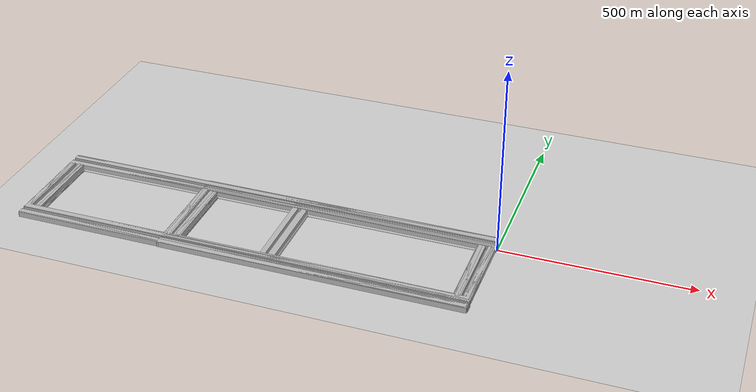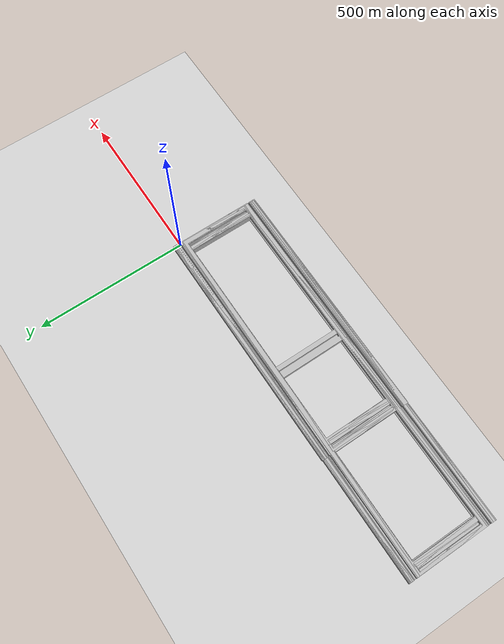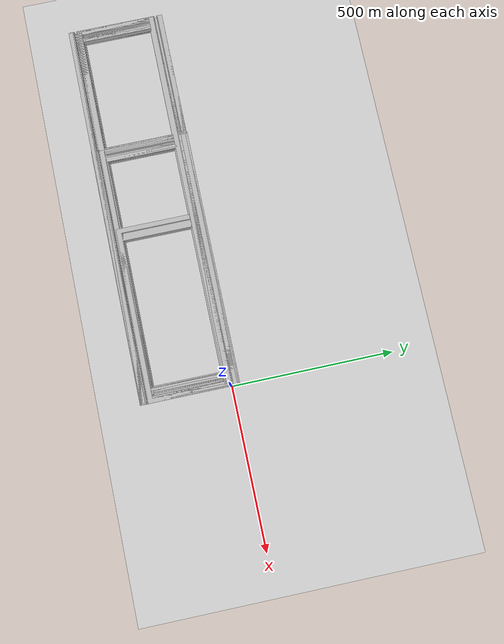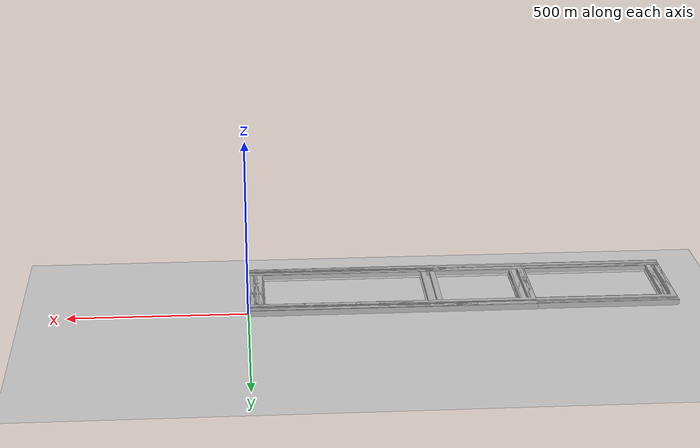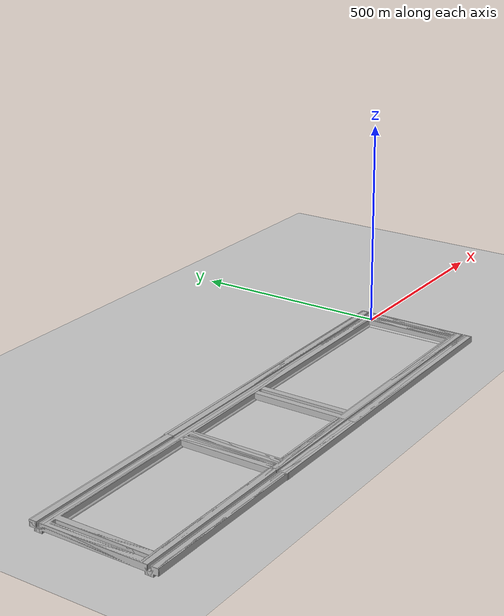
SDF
<sdf version="1.4">
 <world name="default">
  <light name="sun" type="directional">
   <pose>0 0 10 0 -0 0</pose>
   <diffuse>0.8 0.8 0.8 1</diffuse>
   <specular>0.2 0.2 0.2 1</specular>
   <attenuation>
    <range>1000</range>
    <constant>0.9</constant>
    <linear>0.01</linear>
    <quadratic>0.001</quadratic>
   </attenuation>
   <direction>-0.5 0.1 -0.9</direction>
  </light>
  <model name="ground_plane">
   <static>1</static>
   <link name="link">
    <collision name="collision">
     <geometry><plane><normal>0 0 1</normal><size>100 100</size></plane></geometry>
     <surface><friction><ode><mu>0.1</mu><mu2>0.1</mu2></ode></friction></surface>
    </collision>
    <visual name="visual">
     <cast_shadows>0</cast_shadows>
     <geometry><plane><normal>0 0 1</normal><size>100 100</size></plane></geometry>
     <material>
      <script><uri>file://media/materials/scripts/gazebo.material</uri><name>Gazebo/Grey</name></script>
     </material>
    </visual>
    <velocity_decay><linear>0</linear><angular>0</angular></velocity_decay>
   </link>
  </model>
  <physics type="ode">
   <max_step_size>0.001</max_step_size>
   <real_time_factor>1</real_time_factor>
   <real_time_update_rate>1000</real_time_update_rate>
   <gravity>0 0 -9.8</gravity>
  </physics>
  <scene><ambient>0.4 0.4 0.4 1</ambient><background>0.7 0.7 0.7 1</background><shadows>1</shadows></scene>
  <spherical_coordinates>
   <surface_model>EARTH_WGS84</surface_model>
   <latitude_deg>0</latitude_deg>
   <longitude_deg>0</longitude_deg>
   <elevation>0</elevation>
   <heading_deg>0</heading_deg>
  </spherical_coordinates>
  <model name="Wall_800x300x40">
   <static>1</static>
   <link name="link">
    <collision name="collision">
     <pose>-0.02 0.4 0.15 0 -0 0</pose>
     <geometry><box><size>0.04 0.8 0.3</size></box></geometry>
    </collision>
    <visual name="visual">
     <geometry><mesh><uri>model://wall_800x300x40/meshes/wall_800x300x40.dae</uri></mesh></geometry>
    </visual>
    <velocity_decay><linear>0</linear><angular>0</angular></velocity_decay>
   </link>
  </model>
  <model name="platform_800x500x99">
   <static>1</static>
   <link name="link">
    <collision name="collision">
     <pose>-0.25 0.4 0.05 0 -0 0</pose>
     <geometry><box><size>0.5 0.8 0.099</size></box></geometry>
    </collision>
    <visual name="visual">
     <geometry><mesh><uri>model://platform_800x500x99/meshes/platform_800x500x99.dae</uri></mesh></geometry>
    </visual>
    <velocity_decay><linear>0</linear><angular>0</angular></velocity_decay>
   </link>
   <pose>-0.043684 0.004164 0 0 -0 0</pose>
  </model>
  <model name="Conveyor_Belt_180degree">
   <static>1</static>
   <link name="link">
    <collision name="collision">
     <geometry>
      <mesh><uri>model://Conveyor_Belt_180degree/meshes/conveyor_belt_180degree.dae</uri></mesh>
     </geometry>
    </collision>
    <visual name="visual">
     <geometry>
      <mesh><uri>model://Conveyor_Belt_180degree/meshes/conveyor_belt_180degree.dae</uri></mesh>
     </geometry>
    </visual>
    <velocity_decay><linear>0</linear><angular>0</angular></velocity_decay>
   </link>
   <pose>-0.129819 2.33857 0 0 -0 0</pose>
  </model>
  <model name="ppt_platform_800x500x99">
   <static>1</static>
   <link name="link">
    <collision name="collision">
     <geometry>
      <mesh><uri>model://ppt_platform_800x500x99/meshes/ppt_platform_800x500x99.dae</uri></mesh>
     </geometry>
    </collision>
    <visual name="visual">
     <geometry>
      <mesh><uri>model://ppt_platform_800x500x99/meshes/ppt_platform_800x500x99.dae</uri></mesh>
     </geometry>
    </visual>
    <velocity_decay><linear>0</linear><angular>0</angular></velocity_decay>
   </link>
   <pose>-0.400637 4.63098 0 0 -0 3.13685</pose>
  </model>
  <model name="Wall_800x300x40_1">
   <static>1</static>
   <link name="link">
    <collision name="collision">
     <pose>-0.02 0.4 0.15 0 -0 0</pose>
     <geometry><box><size>0.04 0.8 0.3</size></box></geometry>
    </collision>
    <visual name="visual">
     <geometry><mesh><uri>model://wall_800x300x40/meshes/wall_800x300x40.dae</uri></mesh></geometry>
    </visual>
    <velocity_decay><linear>0</linear><angular>0</angular></velocity_decay>
   </link>
   <pose>0 6.42896 0 0 -0 0</pose>
  </model>
  <model name="platform_800x500x99_0">
   <static>1</static>
   <link name="link">
    <collision name="collision">
     <pose>-0.25 0.4 0.05 0 -0 0</pose>
     <geometry><box><size>0.5 0.8 0.099</size></box></geometry>
    </collision>
    <visual name="visual">
     <geometry><mesh><uri>model://platform_800x500x99/meshes/platform_800x500x99.dae</uri></mesh></geometry>
    </visual>
    <velocity_decay><linear>0</linear><angular>0</angular></velocity_decay>
   </link>
   <pose>-0.041711 6.42911 0 0 -0 0</pose>
  </model>
  <model name="Wall_1200x300x40">
   <static>1</static>
   <link name="link">
    <collision name="collision">
     <pose>-0.02 0.6 0.15 0 -0 0</pose>
     <geometry><box><size>0.04 1.2 0.3</size></box></geometry>
    </collision>
    <visual name="visual">
     <geometry><mesh><uri>model://wall_1200x300x40/meshes/wall_1200x300x40.dae</uri></mesh></geometry>
    </visual>
    <velocity_decay><linear>0</linear><angular>0</angular></velocity_decay>
   </link>
   <pose>-2.59027 4.45568 0 0 -0 0</pose>
  </model>
  <model name="Wall_1200x300x40_0">
   <static>1</static>
   <link name="link">
    <collision name="collision">
     <pose>-0.02 0.6 0.15 0 -0 0</pose>
     <geometry><box><size>0.04 1.2 0.3</size></box></geometry>
    </collision>
    <visual name="visual">
     <geometry><mesh><uri>model://wall_1200x300x40/meshes/wall_1200x300x40.dae</uri></mesh></geometry>
    </visual>
    <velocity_decay><linear>0</linear><angular>0</angular></velocity_decay>
   </link>
   <pose>-2.58663 2.5549 0 0 -0 0</pose>
  </model>
  <model name="Wall_1200x300x40_1">
   <static>1</static>
   <link name="link">
    <collision name="collision">
     <pose>-0.02 0.6 0.15 0 -0 0</pose>
     <geometry><box><size>0.04 1.2 0.3</size></box></geometry>
    </collision>
    <visual name="visual">
     <geometry><mesh><uri>model://wall_1200x300x40/meshes/wall_1200x300x40.dae</uri></mesh></geometry>
    </visual>
    <velocity_decay><linear>0</linear><angular>0</angular></velocity_decay>
   </link>
   <pose>-2.58675 1.35351 0 0 -0 0</pose>
  </model>
  <model name="shelf_assembly_270degree_1">
   <static>1</static>
   <link name="link">
    <collision name="collision">
     <geometry>
      <mesh><uri>model://shelf_assembly_270degree/meshes/shelf_assembly_270degree.dae</uri></mesh>
     </geometry>
    </collision>
    <visual name="visual">
     <geometry>
      <mesh><uri>model://shelf_assembly_270degree/meshes/shelf_assembly_270degree.dae</uri></mesh>
     </geometry>
    </visual>
    <velocity_decay><linear>0</linear><angular>0</angular></velocity_decay>
   </link>
   <pose>-1.92205 5.60502 0 0 -0 0</pose>
  </model>
  <model name="platform_800x500x99_90degree">
   <static>1</static>
   <link name="link">
    <collision name="collision">
     <pose>-0.4 -0.25 0.05 0 -0 0</pose>
     <geometry><box><size>0.8 0.5 0.099</size></box></geometry>
    </collision>
    <visual name="visual">
     <geometry>
      <mesh><uri>model://platform_800x500x99_90degree/meshes/platform_800x500x99_90degree.dae</uri></mesh>
     </geometry>
    </visual>
    <velocity_decay><linear>0</linear><angular>0</angular></velocity_decay>
   </link>
   <pose>-1.76068 2.73884 0 0 -0 0</pose>
  </model>
  <model name="table_monitor">
   <static>1</static>
   <link name="link">
    <collision name="collision">
     <geometry><mesh><uri>model://table_monitor/meshes/table_monitor.dae</uri></mesh></geometry>
    </collision>
    <visual name="visual">
     <geometry><mesh><uri>model://table_monitor/meshes/table_monitor.dae</uri></mesh></geometry>
    </visual>
    <velocity_decay><linear>0</linear><angular>0</angular></velocity_decay>
   </link>
   <pose>-3.62486 0.056404 0 0 -0 3.13812</pose>
  </model>
  <model name="Wall_800x300x40_2">
   <static>1</static>
   <link name="link">
    <collision name="collision">
     <pose>-0.02 0.4 0.15 0 -0 0</pose>
     <geometry><box><size>0.04 0.8 0.3</size></box></geometry>
    </collision>
    <visual name="visual">
     <geometry><mesh><uri>model://wall_800x300x40/meshes/wall_800x300x40.dae</uri></mesh></geometry>
    </visual>
    <velocity_decay><linear>0</linear><angular>0</angular></velocity_decay>
   </link>
   <pose>-4.65708 6.54723 0 0 -0 0</pose>
  </model>
  <model name="Wall_1200x300x40_2">
   <static>1</static>
   <link name="link">
    <collision name="collision">
     <pose>-0.02 0.6 0.15 0 -0 0</pose>
     <geometry><box><size>0.04 1.2 0.3</size></box></geometry>
    </collision>
    <visual name="visual">
     <geometry><mesh><uri>model://wall_1200x300x40/meshes/wall_1200x300x40.dae</uri></mesh></geometry>
    </visual>
    <velocity_decay><linear>0</linear><angular>0</angular></velocity_decay>
   </link>
   <pose>-3.44166 4.37132 0 0 -0 0</pose>
  </model>
  <model name="Wall_540x300x40">
   <static>1</static>
   <link name="link">
    <collision name="collision">
     <pose>-0.02 0.27 0.15 0 -0 0</pose>
     <geometry><box><size>0.04 0.54 0.3</size></box></geometry>
    </collision>
    <visual name="visual">
     <geometry><mesh><uri>model://wall_540x300x40/meshes/wall_540x300x40.dae</uri></mesh></geometry>
    </visual>
    <velocity_decay><linear>0</linear><angular>0</angular></velocity_decay>
   </link>
   <pose>-3.44133 3.83071 0 0 -0 0</pose>
  </model>
  <model name="Wall_1200x300x40_3">
   <static>1</static>
   <link name="link">
    <collision name="collision">
     <pose>-0.02 0.6 0.15 0 -0 0</pose>
     <geometry><box><size>0.04 1.2 0.3</size></box></geometry>
    </collision>
    <visual name="visual">
     <geometry><mesh><uri>model://wall_1200x300x40/meshes/wall_1200x300x40.dae</uri></mesh></geometry>
    </visual>
    <velocity_decay><linear>0</linear><angular>0</angular></velocity_decay>
   </link>
   <pose>-3.44177 2.63027 0 0 -0 0</pose>
  </model>
  <model name="Wall_1200x300x40_4">
   <static>1</static>
   <link name="link">
    <collision name="collision">
     <pose>-0.02 0.6 0.15 0 -0 0</pose>
     <geometry><box><size>0.04 1.2 0.3</size></box></geometry>
    </collision>
    <visual name="visual">
     <geometry><mesh><uri>model://wall_1200x300x40/meshes/wall_1200x300x40.dae</uri></mesh></geometry>
    </visual>
    <velocity_decay><linear>0</linear><angular>0</angular></velocity_decay>
   </link>
   <pose>-3.44151 1.42939 0 0 -0 0</pose>
  </model>
  <model name="Wall_800x300x40_3">
   <static>1</static>
   <link name="link">
    <collision name="collision">
     <pose>-0.02 0.4 0.15 0 -0 0</pose>
     <geometry><box><size>0.04 0.8 0.3</size></box></geometry>
    </collision>
    <visual name="visual">
     <geometry><mesh><uri>model://wall_800x300x40/meshes/wall_800x300x40.dae</uri></mesh></geometry>
    </visual>
    <velocity_decay><linear>0</linear><angular>0</angular></velocity_decay>
   </link>
   <pose>-4.50145 0.108117 0 0 -0 0</pose>
  </model>
  <model name="Wall_800x300x40_4">
   <static>1</static>
   <link name="link">
    <collision name="collision">
     <pose>-0.02 0.4 0.15 0 -0 0</pose>
     <geometry><box><size>0.04 0.8 0.3</size></box></geometry>
    </collision>
    <visual name="visual">
     <geometry><mesh><uri>model://wall_800x300x40/meshes/wall_800x300x40.dae</uri></mesh></geometry>
    </visual>
    <velocity_decay><linear>0</linear><angular>0</angular></velocity_decay>
   </link>
   <pose>-4.50144 0.908564 0 0 -0 0</pose>
  </model>
  <model name="Wall_800x300x40_5">
   <static>1</static>
   <link name="link">
    <collision name="collision">
     <pose>-0.02 0.4 0.15 0 -0 0</pose>
     <geometry><box><size>0.04 0.8 0.3</size></box></geometry>
    </collision>
    <visual name="visual">
     <geometry><mesh><uri>model://wall_800x300x40/meshes/wall_800x300x40.dae</uri></mesh></geometry>
    </visual>
    <velocity_decay><linear>0</linear><angular>0</angular></velocity_decay>
   </link>
   <pose>-5.3389 0.940142 0 0 -0 0</pose>
  </model>
  <model name="shelf_assembly">
   <static>1</static>
   <link name="link">
    <collision name="collision">
     <geometry><mesh><uri>model://shelf_assembly/meshes/shelf_assembly.dae</uri></mesh></geometry>
    </collision>
    <visual name="visual">
     <geometry><mesh><uri>model://shelf_assembly/meshes/shelf_assembly.dae</uri></mesh></geometry>
    </visual>
    <velocity_decay><linear>0</linear><angular>0</angular></velocity_decay>
   </link>
   <pose>-5.75696 2.24672 0 0 -0 0</pose>
  </model>
  <model name="platform_800x500x99_1">
   <static>1</static>
   <link name="link">
    <collision name="collision">
     <pose>-0.25 0.4 0.05 0 -0 0</pose>
     <geometry><box><size>0.5 0.8 0.099</size></box></geometry>
    </collision>
    <visual name="visual">
     <geometry><mesh><uri>model://platform_800x500x99/meshes/platform_800x500x99.dae</uri></mesh></geometry>
    </visual>
    <velocity_decay><linear>0</linear><angular>0</angular></velocity_decay>
   </link>
   <pose>-5.25748 3.25902 0 0 -0 0</pose>
  </model>
  <model name="Wall_800x300x40_6">
   <static>1</static>
   <link name="link">
    <collision name="collision">
     <pose>-0.02 0.4 0.15 0 -0 0</pose>
     <geometry><box><size>0.04 0.8 0.3</size></box></geometry>
    </collision>
    <visual name="visual">
     <geometry><mesh><uri>model://wall_800x300x40/meshes/wall_800x300x40.dae</uri></mesh></geometry>
    </visual>
    <velocity_decay><linear>0</linear><angular>0</angular></velocity_decay>
   </link>
   <pose>-5.46484 4.81456 0 0 -0 0</pose>
  </model>
  <model name="platform_800x500x99_2">
   <static>1</static>
   <link name="link">
    <collision name="collision">
     <pose>-0.25 0.4 0.05 0 -0 0</pose>
     <geometry><box><size>0.5 0.8 0.099</size></box></geometry>
    </collision>
    <visual name="visual">
     <geometry><mesh><uri>model://platform_800x500x99/meshes/platform_800x500x99.dae</uri></mesh></geometry>
    </visual>
    <velocity_decay><linear>0</linear><angular>0</angular></velocity_decay>
   </link>
   <pose>-3.48448 4.41199 0 0 -0 0</pose>
  </model>
  <model name="platform_800x500x99_90degree_0">
   <static>1</static>
   <link name="link">
    <collision name="collision">
     <pose>-0.4 -0.25 0.05 0 -0 0</pose>
     <geometry><box><size>0.8 0.5 0.099</size></box></geometry>
    </collision>
    <visual name="visual">
     <geometry>
      <mesh><uri>model://platform_800x500x99_90degree/meshes/platform_800x500x99_90degree.dae</uri></mesh>
     </geometry>
    </visual>
    <velocity_decay><linear>0</linear><angular>0</angular></velocity_decay>
   </link>
   <pose>-3.48604 3.40411 0 0 -0 0</pose>
  </model>
  <model name="platform_800x500x99_90degree_1">
   <static>1</static>
   <link name="link">
    <collision name="collision">
     <geometry>
      <mesh><uri>model://platform_800x500x99_90degree/meshes/platform_800x500x99_90degree.dae</uri></mesh>
     </geometry>
    </collision>
    <visual name="visual">
     <geometry>
      <mesh><uri>model://platform_800x500x99_90degree/meshes/platform_800x500x99_90degree.dae</uri></mesh>
     </geometry>
    </visual>
    <velocity_decay><linear>0</linear><angular>0</angular></velocity_decay>
   </link>
   <pose>-1.60932 7.75889 0 0 -0 0</pose>
  </model>
  <model name="platform_800x500x99_90degree_2">
   <static>1</static>
   <link name="link">
    <collision name="collision">
     <geometry>
      <mesh><uri>model://platform_800x500x99_90degree/meshes/platform_800x500x99_90degree.dae</uri></mesh>
     </geometry>
    </collision>
    <visual name="visual">
     <geometry>
      <mesh><uri>model://platform_800x500x99_90degree/meshes/platform_800x500x99_90degree.dae</uri></mesh>
     </geometry>
    </visual>
    <velocity_decay><linear>0</linear><angular>0</angular></velocity_decay>
   </link>
   <pose>-3.05104 7.77406 0 0 -0 0</pose>
  </model>
  <model name="platform_800x500x99_3">
   <static>1</static>
   <link name="link">
    <collision name="collision">
     <geometry><mesh><uri>model://platform_800x500x99/meshes/platform_800x500x99.dae</uri></mesh></geometry>
    </collision>
    <visual name="visual">
     <geometry><mesh><uri>model://platform_800x500x99/meshes/platform_800x500x99.dae</uri></mesh></geometry>
    </visual>
    <velocity_decay><linear>0</linear><angular>0</angular></velocity_decay>
   </link>
   <pose>0.094527 2.90847 0 0 -0 0</pose>
  </model>
  <model name="platform_800x500x99_4">
   <static>1</static>
   <link name="link">
    <collision name="collision">
     <geometry><mesh><uri>model://platform_800x500x99/meshes/platform_800x500x99.dae</uri></mesh></geometry>
    </collision>
    <visual name="visual">
     <geometry><mesh><uri>model://platform_800x500x99/meshes/platform_800x500x99.dae</uri></mesh></geometry>
    </visual>
    <velocity_decay><linear>0</linear><angular>0</angular></velocity_decay>
   </link>
   <pose>-4.0002 0.108431 0 0 -0 0</pose>
  </model>
  <model name="unit_cylinder_1">
   <pose>-2.11419 -0.343426 0.054868 0 -0 0.004536</pose>
   <link name="link">
    <inertial>
     <mass>1</mass>
     <inertia><ixx>1</ixx><ixy>0</ixy><ixz>0</ixz><iyy>1</iyy><iyz>0</iyz><izz>1</izz></inertia>
    </inertial>
    <collision name="collision">
     <geometry><cylinder><radius>0.5</radius><length>0.109738</length></cylinder></geometry>
    </collision>
    <visual name="visual">
     <geometry><cylinder><radius>0.5</radius><length>1</length></cylinder></geometry>
     <material>
      <script><uri>file://media/materials/scripts/gazebo.material</uri><name>Gazebo/Grey</name></script>
     </material>
    </visual>
    <velocity_decay><linear>0</linear><angular>0</angular></velocity_decay>
   </link>
   <static>0</static>
  </model>
 </world>
</sdf>
